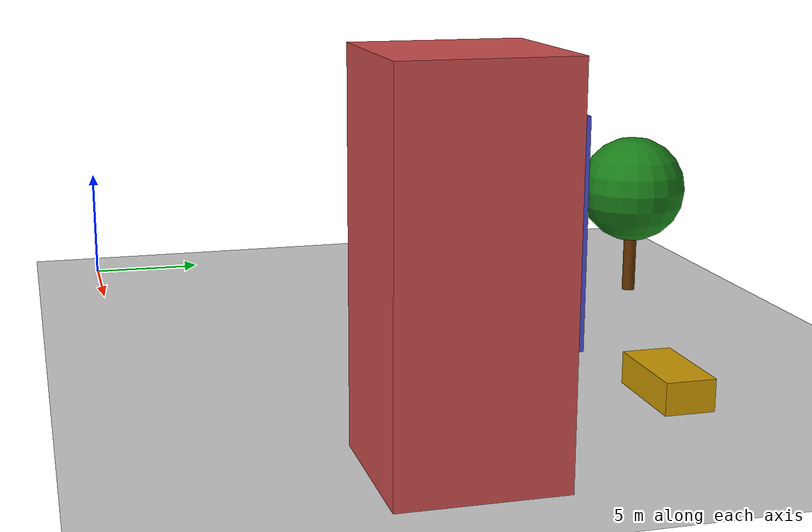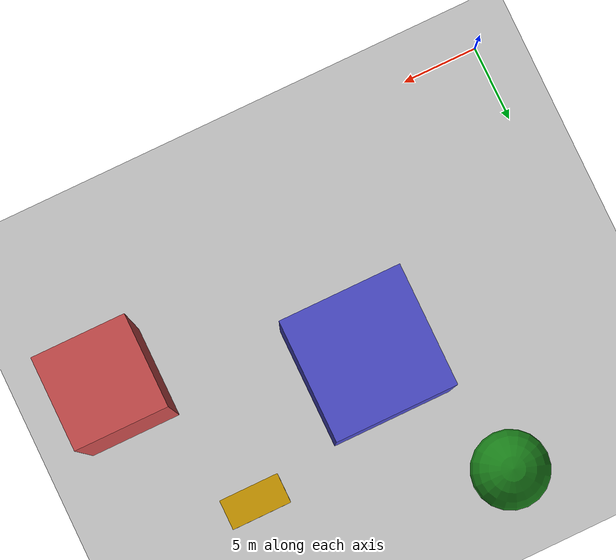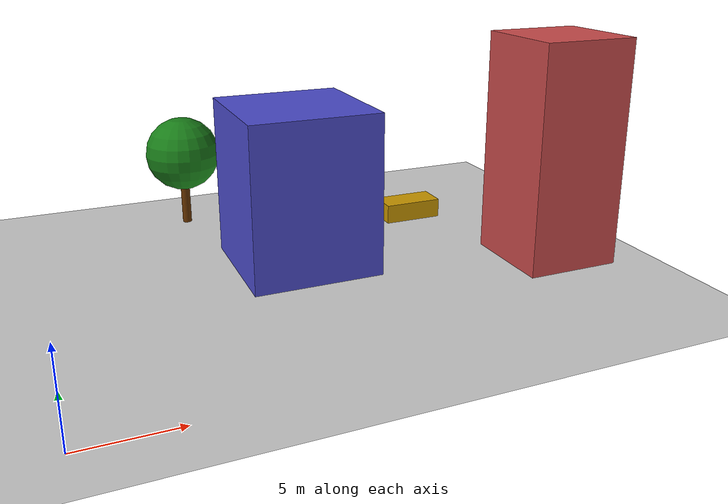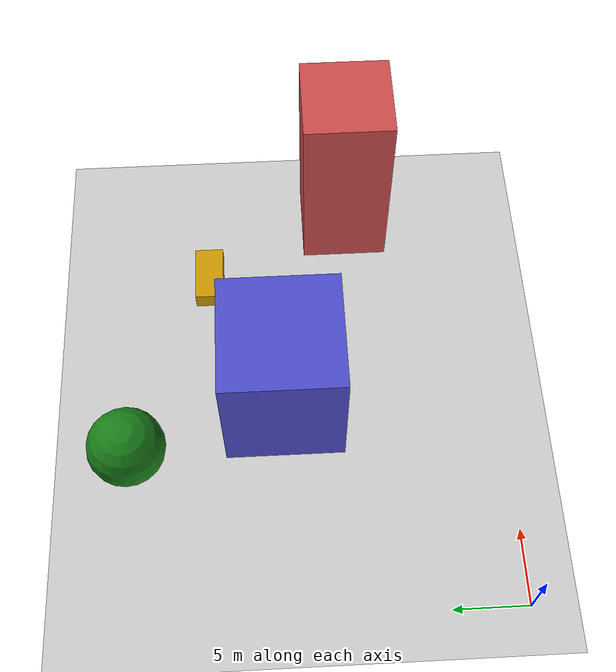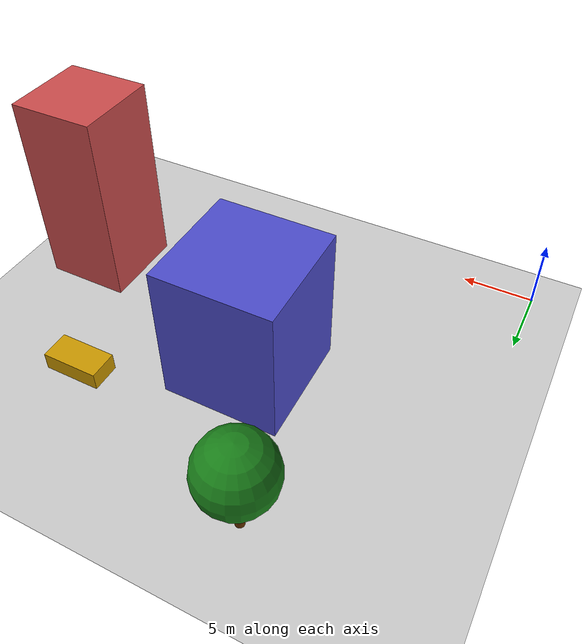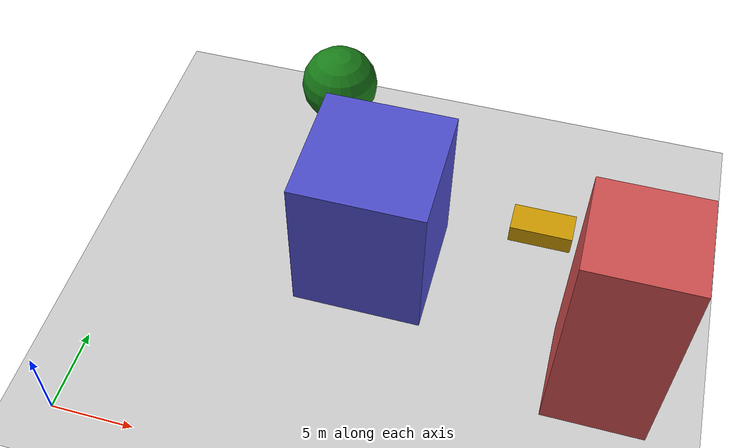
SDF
<?xml version="1.0" encoding="UTF-8"?>
<sdf version="1.9">
  <world name="default">
    <physics type="ode">
      <max_step_size>0.004</max_step_size>
      <real_time_factor>1.0</real_time_factor>
      <real_time_update_rate>250</real_time_update_rate>
    </physics>
    <gravity>0 0 -9.8</gravity>
    <magnetic_field>6e-06 2.3e-05 -4.2e-05</magnetic_field>
    <atmosphere type="adiabatic"/>
    <scene>
      <grid>false</grid>
      <ambient>0.4 0.4 0.4 1</ambient>
      <background>0.7 0.7 0.7 1</background>
      <shadows>true</shadows>
    </scene>
    <model name="ground_plane">
      <static>true</static>
      <link name="link">
        <collision name="collision">
          <geometry>
            <plane>
              <normal>0 0 1</normal>
              <size>1 1</size>
            </plane>
          </geometry>
          <surface>
            <friction>
              <ode/>
            </friction>
            <bounce/>
            <contact/>
          </surface>
        </collision>
        <visual name="visual">
          <geometry>
            <plane>
              <normal>0 0 1</normal>
              <size>500 500</size>
            </plane>
          </geometry>
          <material>
            <ambient>0.8 0.8 0.8 1</ambient>
            <diffuse>0.8 0.8 0.8 1</diffuse>
            <specular>0.8 0.8 0.8 1</specular>
          </material>
        </visual>
        <pose>0 0 0 0 -0 0</pose>
        <inertial>
          <pose>0 0 0 0 -0 0</pose>
          <mass>1</mass>
          <inertia>
            <ixx>1</ixx>
            <ixy>0</ixy>
            <ixz>0</ixz>
            <iyy>1</iyy>
            <iyz>0</iyz>
            <izz>1</izz>
          </inertia>
        </inertial>
        <enable_wind>false</enable_wind>
      </link>
      <pose>0 0 0 0 -0 0</pose>
      <self_collide>false</self_collide>
    </model>
    <light name="sunUTC" type="directional">
      <pose>0 0 500 0 -0 0</pose>
      <cast_shadows>true</cast_shadows>
      <intensity>1</intensity>
      <direction>0.001 0.625 -0.78</direction>
      <diffuse>0.904 0.904 0.904 1</diffuse>
      <specular>0.271 0.271 0.271 1</specular>
      <attenuation>
        <range>2000</range>
        <linear>0</linear>
        <constant>1</constant>
        <quadratic>0</quadratic>
      </attenuation>
      <spot>
        <inner_angle>0</inner_angle>
        <outer_angle>0</outer_angle>
        <falloff>0</falloff>
      </spot>
    </light>
    <spherical_coordinates>
      <surface_model>EARTH_WGS84</surface_model>
      <world_frame_orientation>ENU</world_frame_orientation>
      <latitude_deg>47.397971057728974</latitude_deg>
      <longitude_deg> 8.546163739800146</longitude_deg>
      <elevation>0</elevation>
    </spherical_coordinates>
    <!-- Edificio 1 -->
    <model name="building_1">
      <static>true</static>
      <pose>15 15 5 0 0 0</pose>
      <link name="link">
        <collision name="collision">
          <geometry><box><size>8 8 10</size></box></geometry>
        </collision>
        <visual name="visual">
          <geometry><box><size>8 8 10</size></box></geometry>
          <material><ambient>0.3 0.3 0.8 1</ambient><diffuse>0.3 0.3 0.8 1</diffuse></material>
        </visual>
      </link>
    </model>

    <model name="building_2">
      <static>true</static>
      <pose>30 10 7 0 0 0</pose>
      <link name="link">
        <collision name="collision">
          <geometry><box><size>6 6 14</size></box></geometry>
        </collision>
        <visual name="visual">
          <geometry><box><size>6 6 14</size></box></geometry>
          <material><ambient>0.8 0.3 0.3 1</ambient><diffuse>0.8 0.3 0.3 1</diffuse></material>
        </visual>
      </link>
    </model>

    <model name="tree_1">
      <static>true</static>
      <pose>10 25 2 0 0 0</pose>
      <link name="link">
        <collision name="collision">
          <geometry><cylinder><radius>0.3</radius><length>4</length></cylinder></geometry>
        </collision>
        <visual name="trunk">
          <geometry><cylinder><radius>0.3</radius><length>4</length></cylinder></geometry>
          <material><ambient>0.4 0.2 0.0 1</ambient></material>
        </visual>
        <collision name="foliage_col">
          <pose>0 0 3 0 0 0</pose>
          <geometry><sphere><radius>2.5</radius></sphere></geometry>
        </collision>
        <visual name="foliage">
          <pose>0 0 3 0 0 0</pose>
          <geometry><sphere><radius>2.5</radius></sphere></geometry>
          <material><ambient>0.1 0.5 0.1 1</ambient></material>
        </visual>
      </link>
    </model>

    <model name="vehicle_1">
      <static>true</static>
      <pose>25 20 0.5 0 0 0</pose>
      <link name="link">
        <collision name="collision">
          <geometry><box><size>4 2 1.5</size></box></geometry>
        </collision>
        <visual name="visual">
          <geometry><box><size>4 2 1.5</size></box></geometry>
          <material><ambient>0.8 0.6 0.0 1</ambient><diffuse>0.8 0.6 0.0 1</diffuse></material>
        </visual>
      </link>
    </model>

    <model name="person_1">
      <static>true</static>
      <pose>12 18 0.9 0 0 0</pose>
      <link name="link">
        <collision name="collision">
          <geometry><cylinder><radius>0.3</radius><length>1.8</length></cylinder></geometry>
        </collision>
        <visual name="visual">
          <geometry><cylinder><radius>0.3</radius><length>1.8</length></cylinder></geometry>
          <material><ambient>0.9 0.7 0.5 1</ambient></material>
        </visual>
      </link>
    </model>
  </world>
</sdf>
